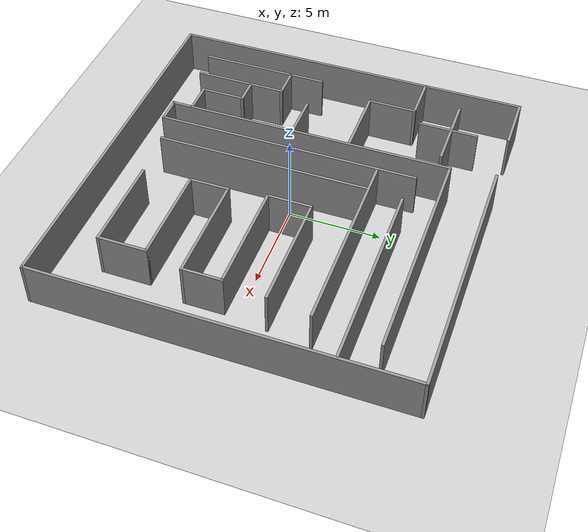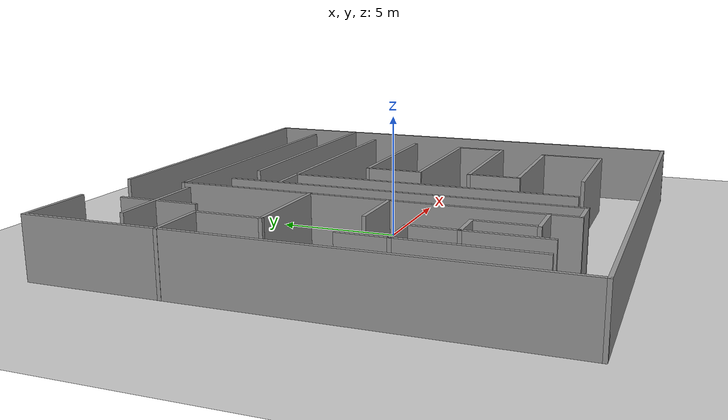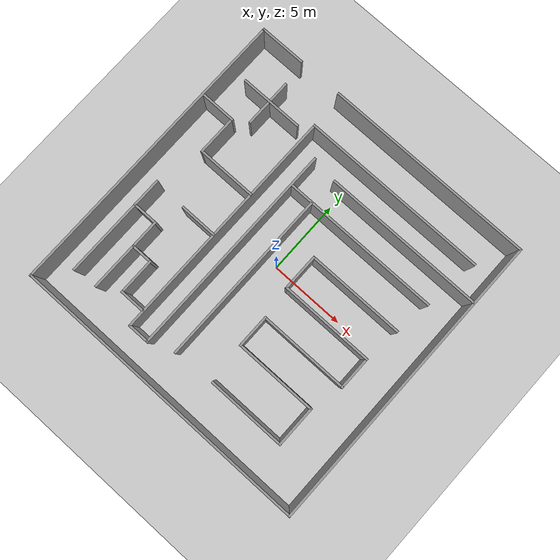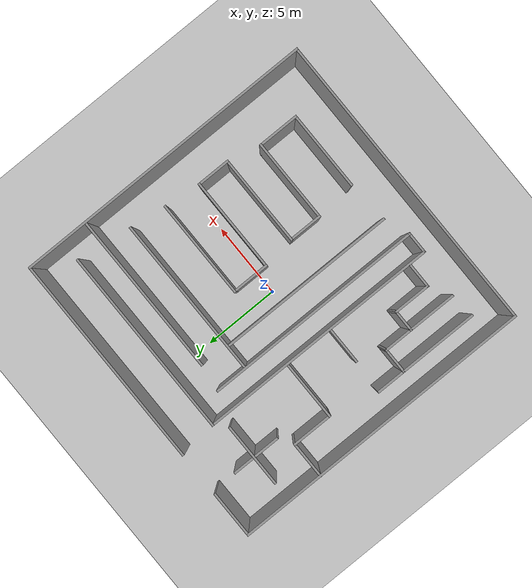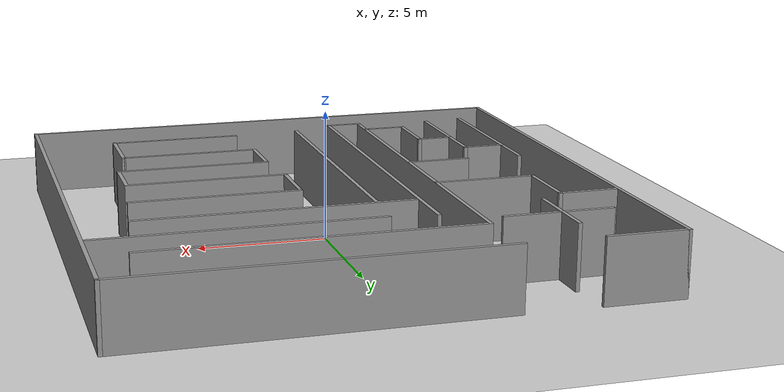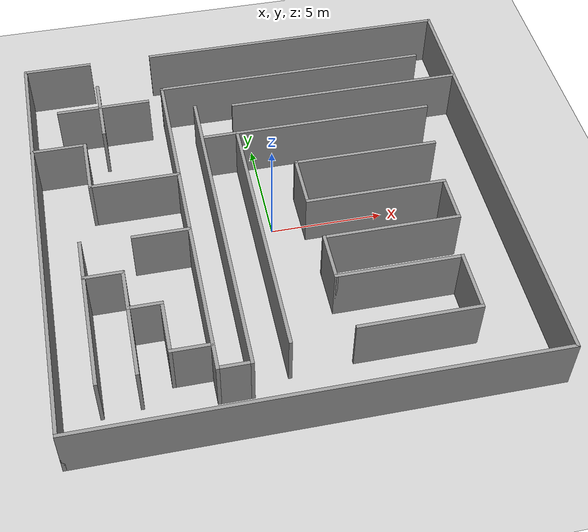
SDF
<sdf version="1.7">
 <world name="default">
  <light name="sun" type="directional">
   <pose>0 0 10 0 -0 0</pose>
   <diffuse>0.8 0.8 0.8 1</diffuse>
   <specular>0.2 0.2 0.2 1</specular>
   <attenuation>
    <range>1000</range>
    <constant>0.9</constant>
    <linear>0.01</linear>
    <quadratic>0.001</quadratic>
   </attenuation>
   <direction>-0.5 0.1 -0.9</direction>
   <spot><inner_angle>0</inner_angle><outer_angle>0</outer_angle><falloff>0</falloff></spot>
  </light>
  <model name="ground_plane">
   <static>1</static>
   <link name="link">
    <collision name="collision">
     <geometry><plane><normal>0 0 1</normal><size>100 100</size></plane></geometry>
     <surface><friction><ode><mu>100</mu><mu2>50</mu2></ode></friction></surface>
    </collision>
    <visual name="visual">
     <cast_shadows>0</cast_shadows>
     <geometry><plane><normal>0 0 1</normal><size>100 100</size></plane></geometry>
     <material>
      <script><uri>file://media/materials/scripts/gazebo.material</uri><name>Gazebo/Grey</name></script>
     </material>
    </visual>
   </link>
  </model>
  <gravity>0 0 -9.8</gravity>
  <magnetic_field>6e-06 2.3e-05 -4.2e-05</magnetic_field>
  <atmosphere type="adiabatic"/>
  <physics type="ode">
   <max_step_size>0.001</max_step_size>
   <real_time_factor>1</real_time_factor>
   <real_time_update_rate>1000</real_time_update_rate>
  </physics>
  <scene><ambient>0.4 0.4 0.4 1</ambient><background>0.7 0.7 0.7 1</background><shadows>1</shadows></scene>
  <spherical_coordinates>
   <surface_model>EARTH_WGS84</surface_model>
   <latitude_deg>0</latitude_deg>
   <longitude_deg>0</longitude_deg>
   <elevation>0</elevation>
   <heading_deg>0</heading_deg>
  </spherical_coordinates>
  <model name="final_maze_2">
   <pose>-0.002942 -0 0 0 -0 0</pose>
   <link name="Wall_0">
    <collision name="Wall_0_Collision">
     <geometry><box><size>20.15 0.15 2.5</size></box></geometry>
     <pose>0 0 1.25 0 -0 0</pose>
    </collision>
    <visual name="Wall_0_Visual">
     <pose>0 0 1.25 0 -0 0</pose>
     <geometry><box><size>20.15 0.15 2.5</size></box></geometry>
     <material>
      <script><uri>file://media/materials/scripts/gazebo.material</uri><name>Gazebo/Grey</name></script>
      <ambient>1 1 1 1</ambient>
     </material>
     <meta><layer>0</layer></meta>
    </visual>
    <pose>-9.99706 0 0 0 -0 1.5708</pose>
   </link>
   <link name="Wall_16">
    <collision name="Wall_16_Collision">
     <geometry><box><size>12.5 0.15 2.5</size></box></geometry>
     <pose>0 0 1.25 0 -0 0</pose>
    </collision>
    <visual name="Wall_16_Visual">
     <pose>0 0 1.25 0 -0 0</pose>
     <geometry><box><size>12.5 0.15 2.5</size></box></geometry>
     <material>
      <script><uri>file://media/materials/scripts/gazebo.material</uri><name>Gazebo/Grey</name></script>
      <ambient>1 1 1 1</ambient>
     </material>
     <meta><layer>0</layer></meta>
    </visual>
    <pose>2.4033 7.57226 0 0 -0 3.14159</pose>
   </link>
   <link name="Wall_17">
    <collision name="Wall_17_Collision">
     <geometry><box><size>16 0.15 2.5</size></box></geometry>
     <pose>0 0 1.25 0 -0 0</pose>
    </collision>
    <visual name="Wall_17_Visual">
     <pose>0 0 1.25 0 -0 0</pose>
     <geometry><box><size>16 0.15 2.5</size></box></geometry>
     <material>
      <script><uri>file://media/materials/scripts/gazebo.material</uri><name>Gazebo/Grey</name></script>
      <ambient>1 1 1 1</ambient>
     </material>
     <meta><layer>0</layer></meta>
    </visual>
    <pose>-3.7717 -0.352735 0 0 -0 -1.5708</pose>
   </link>
   <link name="Wall_18">
    <collision name="Wall_18_Collision">
     <geometry><box><size>1.5 0.15 2.5</size></box></geometry>
     <pose>0 0 1.25 0 -0 0</pose>
    </collision>
    <visual name="Wall_18_Visual">
     <pose>0 0 1.25 0 -0 0</pose>
     <geometry><box><size>1.5 0.15 2.5</size></box></geometry>
     <material>
      <script><uri>file://media/materials/scripts/gazebo.material</uri><name>Gazebo/Grey</name></script>
      <ambient>1 1 1 1</ambient>
     </material>
     <meta><layer>0</layer></meta>
    </visual>
    <pose>-3.0967 -8.27773 0 0 -0 0</pose>
   </link>
   <link name="Wall_19">
    <collision name="Wall_19_Collision">
     <geometry><box><size>14.5 0.15 2.5</size></box></geometry>
     <pose>0 0 1.25 0 -0 0</pose>
    </collision>
    <visual name="Wall_19_Visual">
     <pose>0 0 1.25 0 -0 0</pose>
     <geometry><box><size>14.5 0.15 2.5</size></box></geometry>
     <material>
      <script><uri>file://media/materials/scripts/gazebo.material</uri><name>Gazebo/Grey</name></script>
      <ambient>1 1 1 1</ambient>
     </material>
     <meta><layer>0</layer></meta>
    </visual>
    <pose>-2.4217 -1.10274 0 0 -0 1.5708</pose>
   </link>
   <link name="Wall_2">
    <collision name="Wall_2_Collision">
     <geometry><box><size>20.15 0.15 2.5</size></box></geometry>
     <pose>0 0 1.25 0 -0 0</pose>
    </collision>
    <visual name="Wall_2_Visual">
     <pose>0 0 1.25 0 -0 0</pose>
     <geometry><box><size>20.15 0.15 2.5</size></box></geometry>
     <material>
      <script><uri>file://media/materials/scripts/gazebo.material</uri><name>Gazebo/Grey</name></script>
      <ambient>1 1 1 1</ambient>
     </material>
     <meta><layer>0</layer></meta>
    </visual>
    <pose>10.0029 0 0 0 -0 -1.5708</pose>
   </link>
   <link name="Wall_21">
    <collision name="Wall_21_Collision">
     <geometry><box><size>10.75 0.15 2.5</size></box></geometry>
     <pose>0 0 1.25 0 -0 0</pose>
    </collision>
    <visual name="Wall_21_Visual">
     <pose>0 0 1.25 0 -0 0</pose>
     <geometry><box><size>10.75 0.15 2.5</size></box></geometry>
     <material>
      <script><uri>file://media/materials/scripts/gazebo.material</uri><name>Gazebo/Grey</name></script>
      <ambient>1 1 1 1</ambient>
     </material>
     <meta><layer>0</layer></meta>
    </visual>
    <pose>4.64282 5.8486 0 0 -0 3.14159</pose>
   </link>
   <link name="Wall_27">
    <collision name="Wall_27_Collision">
     <geometry><box><size>10.5 0.15 2.5</size></box></geometry>
     <pose>0 0 1.25 0 -0 0</pose>
    </collision>
    <visual name="Wall_27_Visual">
     <pose>0 0 1.25 0 -0 0</pose>
     <geometry><box><size>10.5 0.15 2.5</size></box></geometry>
     <material>
      <script><uri>file://media/materials/scripts/gazebo.material</uri><name>Gazebo/Grey</name></script>
      <ambient>1 1 1 1</ambient>
     </material>
     <meta><layer>0</layer></meta>
    </visual>
    <pose>2.90274 4.01266 0 0 -0 0</pose>
   </link>
   <link name="Wall_29">
    <collision name="Wall_29_Collision">
     <geometry><box><size>11.75 0.15 2.5</size></box></geometry>
     <pose>0 0 1.25 0 -0 0</pose>
    </collision>
    <visual name="Wall_29_Visual">
     <pose>0 0 1.25 0 -0 0</pose>
     <geometry><box><size>11.75 0.15 2.5</size></box></geometry>
     <material>
      <script><uri>file://media/materials/scripts/gazebo.material</uri><name>Gazebo/Grey</name></script>
      <ambient>1 1 1 1</ambient>
     </material>
     <meta><layer>0</layer></meta>
    </visual>
    <pose>-0.807781 -1.85208 0 0 -0 -1.5708</pose>
   </link>
   <link name="Wall_32">
    <collision name="Wall_32_Collision">
     <geometry><box><size>1.75 0.15 2.5</size></box></geometry>
     <pose>0 0 1.25 0 -0 0</pose>
    </collision>
    <visual name="Wall_32_Visual">
     <pose>0 0 1.25 0 -0 0</pose>
     <geometry><box><size>1.75 0.15 2.5</size></box></geometry>
     <material>
      <script><uri>file://media/materials/scripts/gazebo.material</uri><name>Gazebo/Grey</name></script>
      <ambient>1 1 1 1</ambient>
     </material>
     <meta><layer>0</layer></meta>
    </visual>
    <pose>-4.62953 -7.17136 0 0 -0 3.14159</pose>
   </link>
   <link name="Wall_33">
    <collision name="Wall_33_Collision">
     <geometry><box><size>2.5 0.15 2.5</size></box></geometry>
     <pose>0 0 1.25 0 -0 0</pose>
    </collision>
    <visual name="Wall_33_Visual">
     <pose>0 0 1.25 0 -0 0</pose>
     <geometry><box><size>2.5 0.15 2.5</size></box></geometry>
     <material>
      <script><uri>file://media/materials/scripts/gazebo.material</uri><name>Gazebo/Grey</name></script>
      <ambient>1 1 1 1</ambient>
     </material>
     <meta><layer>0</layer></meta>
    </visual>
    <pose>-5.42953 -5.99636 0 0 -0 1.5708</pose>
   </link>
   <link name="Wall_34">
    <collision name="Wall_34_Collision">
     <geometry><box><size>1.5 0.15 2.5</size></box></geometry>
     <pose>0 0 1.25 0 -0 0</pose>
    </collision>
    <visual name="Wall_34_Visual">
     <pose>0 0 1.25 0 -0 0</pose>
     <geometry><box><size>1.5 0.15 2.5</size></box></geometry>
     <material>
      <script><uri>file://media/materials/scripts/gazebo.material</uri><name>Gazebo/Grey</name></script>
      <ambient>1 1 1 1</ambient>
     </material>
     <meta><layer>0</layer></meta>
    </visual>
    <pose>-6.10453 -4.82136 0 0 -0 3.14159</pose>
   </link>
   <link name="Wall_35">
    <collision name="Wall_35_Collision">
     <geometry><box><size>2 0.15 2.5</size></box></geometry>
     <pose>0 0 1.25 0 -0 0</pose>
    </collision>
    <visual name="Wall_35_Visual">
     <pose>0 0 1.25 0 -0 0</pose>
     <geometry><box><size>2 0.15 2.5</size></box></geometry>
     <material>
      <script><uri>file://media/materials/scripts/gazebo.material</uri><name>Gazebo/Grey</name></script>
      <ambient>1 1 1 1</ambient>
     </material>
     <meta><layer>0</layer></meta>
    </visual>
    <pose>-6.77953 -3.89636 0 0 -0 1.5708</pose>
   </link>
   <link name="Wall_36">
    <collision name="Wall_36_Collision">
     <geometry><box><size>1.75 0.15 2.5</size></box></geometry>
     <pose>0 0 1.25 0 -0 0</pose>
    </collision>
    <visual name="Wall_36_Visual">
     <pose>0 0 1.25 0 -0 0</pose>
     <geometry><box><size>1.75 0.15 2.5</size></box></geometry>
     <material>
      <script><uri>file://media/materials/scripts/gazebo.material</uri><name>Gazebo/Grey</name></script>
      <ambient>1 1 1 1</ambient>
     </material>
     <meta><layer>0</layer></meta>
    </visual>
    <pose>-7.57953 -2.97136 0 0 -0 3.14159</pose>
   </link>
   <link name="Wall_37">
    <collision name="Wall_37_Collision">
     <geometry><box><size>2 0.15 2.5</size></box></geometry>
     <pose>0 0 1.25 0 -0 0</pose>
    </collision>
    <visual name="Wall_37_Visual">
     <pose>0 0 1.25 0 -0 0</pose>
     <geometry><box><size>2 0.15 2.5</size></box></geometry>
     <material>
      <script><uri>file://media/materials/scripts/gazebo.material</uri><name>Gazebo/Grey</name></script>
      <ambient>1 1 1 1</ambient>
     </material>
     <meta><layer>0</layer></meta>
    </visual>
    <pose>-8.37953 -2.04637 0 0 -0 1.5708</pose>
   </link>
   <link name="Wall_4">
    <collision name="Wall_4_Collision">
     <geometry><box><size>20.15 0.15 2.5</size></box></geometry>
     <pose>0 0 1.25 0 -0 0</pose>
    </collision>
    <visual name="Wall_4_Visual">
     <pose>0 0 1.25 0 -0 0</pose>
     <geometry><box><size>20.15 0.15 2.5</size></box></geometry>
     <material>
      <script><uri>file://media/materials/scripts/gazebo.material</uri><name>Gazebo/Grey</name></script>
      <ambient>1 1 1 1</ambient>
     </material>
     <meta><layer>0</layer></meta>
    </visual>
    <pose>0.002942 -10 0 0 -0 0</pose>
   </link>
   <link name="Wall_44">
    <collision name="Wall_44_Collision">
     <geometry><box><size>5.25 0.15 2.5</size></box></geometry>
     <pose>0 0 1.25 0 -0 0</pose>
    </collision>
    <visual name="Wall_44_Visual">
     <pose>0 0 1.25 0 -0 0</pose>
     <geometry><box><size>5.25 0.15 2.5</size></box></geometry>
     <material>
      <script><uri>file://media/materials/scripts/gazebo.material</uri><name>Gazebo/Grey</name></script>
      <ambient>1 1 1 1</ambient>
     </material>
     <meta><layer>0</layer></meta>
    </visual>
    <pose>-8.37953 -5.52137 0 0 -0 -1.5708</pose>
   </link>
   <link name="Wall_46">
    <collision name="Wall_46_Collision">
     <geometry><box><size>3.25 0.15 2.5</size></box></geometry>
     <pose>0 0 1.25 0 -0 0</pose>
    </collision>
    <visual name="Wall_46_Visual">
     <pose>0 0 1.25 0 -0 0</pose>
     <geometry><box><size>3.25 0.15 2.5</size></box></geometry>
     <material>
      <script><uri>file://media/materials/scripts/gazebo.material</uri><name>Gazebo/Grey</name></script>
      <ambient>1 1 1 1</ambient>
     </material>
     <meta><layer>0</layer></meta>
    </visual>
    <pose>-6.77953 -6.37136 0 0 -0 -1.5708</pose>
   </link>
   <link name="Wall_48">
    <collision name="Wall_48_Collision">
     <geometry><box><size>4 0.15 2.5</size></box></geometry>
     <pose>0 0 1.25 0 -0 0</pose>
    </collision>
    <visual name="Wall_48_Visual">
     <pose>0 0 1.25 0 -0 0</pose>
     <geometry><box><size>4 0.15 2.5</size></box></geometry>
     <material>
      <script><uri>file://media/materials/scripts/gazebo.material</uri><name>Gazebo/Grey</name></script>
      <ambient>1 1 1 1</ambient>
     </material>
     <meta><layer>0</layer></meta>
    </visual>
    <pose>-5.72794 1.99097 0 0 -0 3.14159</pose>
   </link>
   <link name="Wall_52">
    <collision name="Wall_52_Collision">
     <geometry><box><size>2.75 0.15 2.5</size></box></geometry>
     <pose>0 0 1.25 0 -0 0</pose>
    </collision>
    <visual name="Wall_52_Visual">
     <pose>0 0 1.25 0 -0 0</pose>
     <geometry><box><size>2.75 0.15 2.5</size></box></geometry>
     <material>
      <script><uri>file://media/materials/scripts/gazebo.material</uri><name>Gazebo/Grey</name></script>
      <ambient>1 1 1 1</ambient>
     </material>
     <meta><layer>0</layer></meta>
    </visual>
    <pose>-7.65294 3.29097 0 0 -0 1.5708</pose>
   </link>
   <link name="Wall_53">
    <collision name="Wall_53_Collision">
     <geometry><box><size>2.5 0.15 2.5</size></box></geometry>
     <pose>0 0 1.25 0 -0 0</pose>
    </collision>
    <visual name="Wall_53_Visual">
     <pose>0 0 1.25 0 -0 0</pose>
     <geometry><box><size>2.5 0.15 2.5</size></box></geometry>
     <material>
      <script><uri>file://media/materials/scripts/gazebo.material</uri><name>Gazebo/Grey</name></script>
      <ambient>1 1 1 1</ambient>
     </material>
     <meta><layer>0</layer></meta>
    </visual>
    <pose>-8.82794 4.59097 0 0 -0 3.14159</pose>
   </link>
   <link name="Wall_55">
    <collision name="Wall_55_Collision">
     <geometry><box><size>4.25 0.15 2.5</size></box></geometry>
     <pose>0 0 1.25 0 -0 0</pose>
    </collision>
    <visual name="Wall_55_Visual">
     <pose>0 0 1.25 0 -0 0</pose>
     <geometry><box><size>4.25 0.15 2.5</size></box></geometry>
     <material>
      <script><uri>file://media/materials/scripts/gazebo.material</uri><name>Gazebo/Grey</name></script>
      <ambient>1 1 1 1</ambient>
     </material>
     <meta><layer>0</layer></meta>
    </visual>
    <pose>-6.59689 6.89542 0 0 -0 0</pose>
   </link>
   <link name="Wall_57">
    <collision name="Wall_57_Collision">
     <geometry><box><size>2.5 0.15 2.5</size></box></geometry>
     <pose>0 0 1.25 0 -0 0</pose>
    </collision>
    <visual name="Wall_57_Visual">
     <pose>0 0 1.25 0 -0 0</pose>
     <geometry><box><size>2.5 0.15 2.5</size></box></geometry>
     <material>
      <script><uri>file://media/materials/scripts/gazebo.material</uri><name>Gazebo/Grey</name></script>
      <ambient>1 1 1 1</ambient>
     </material>
     <meta><layer>0</layer></meta>
    </visual>
    <pose>-4.99746 -1.21616 0 0 -0 3.14159</pose>
   </link>
   <link name="Wall_59">
    <collision name="Wall_59_Collision">
     <geometry><box><size>3.25 0.15 2.5</size></box></geometry>
     <pose>0 0 1.25 0 -0 0</pose>
    </collision>
    <visual name="Wall_59_Visual">
     <pose>0 0 1.25 0 -0 0</pose>
     <geometry><box><size>3.25 0.15 2.5</size></box></geometry>
     <material>
      <script><uri>file://media/materials/scripts/gazebo.material</uri><name>Gazebo/Grey</name></script>
      <ambient>1 1 1 1</ambient>
     </material>
     <meta><layer>0</layer></meta>
    </visual>
    <pose>-6.73686 6.75082 0 0 -0 -1.5708</pose>
   </link>
   <link name="Wall_61">
    <collision name="Wall_61_Collision">
     <geometry><box><size>6.5 0.15 2.5</size></box></geometry>
     <pose>0 0 1.25 0 -0 0</pose>
    </collision>
    <visual name="Wall_61_Visual">
     <pose>0 0 1.25 0 -0 0</pose>
     <geometry><box><size>6.5 0.15 2.5</size></box></geometry>
     <material>
      <script><uri>file://media/materials/scripts/gazebo.material</uri><name>Gazebo/Grey</name></script>
      <ambient>1 1 1 1</ambient>
     </material>
     <meta><layer>0</layer></meta>
    </visual>
    <pose>4.59472 1.67485 0 0 -0 3.14159</pose>
   </link>
   <link name="Wall_62">
    <collision name="Wall_62_Collision">
     <geometry><box><size>2.5 0.15 2.5</size></box></geometry>
     <pose>0 0 1.25 0 -0 0</pose>
    </collision>
    <visual name="Wall_62_Visual">
     <pose>0 0 1.25 0 -0 0</pose>
     <geometry><box><size>2.5 0.15 2.5</size></box></geometry>
     <material>
      <script><uri>file://media/materials/scripts/gazebo.material</uri><name>Gazebo/Grey</name></script>
      <ambient>1 1 1 1</ambient>
     </material>
     <meta><layer>0</layer></meta>
    </visual>
    <pose>1.41972 0.499851 0 0 -0 -1.5708</pose>
   </link>
   <link name="Wall_63">
    <collision name="Wall_63_Collision">
     <geometry><box><size>6.25 0.15 2.5</size></box></geometry>
     <pose>0 0 1.25 0 -0 0</pose>
    </collision>
    <visual name="Wall_63_Visual">
     <pose>0 0 1.25 0 -0 0</pose>
     <geometry><box><size>6.25 0.15 2.5</size></box></geometry>
     <material>
      <script><uri>file://media/materials/scripts/gazebo.material</uri><name>Gazebo/Grey</name></script>
      <ambient>1 1 1 1</ambient>
     </material>
     <meta><layer>0</layer></meta>
    </visual>
    <pose>4.46972 -0.675149 0 0 -0 0</pose>
   </link>
   <link name="Wall_64">
    <collision name="Wall_64_Collision">
     <geometry><box><size>2.25 0.15 2.5</size></box></geometry>
     <pose>0 0 1.25 0 -0 0</pose>
    </collision>
    <visual name="Wall_64_Visual">
     <pose>0 0 1.25 0 -0 0</pose>
     <geometry><box><size>2.25 0.15 2.5</size></box></geometry>
     <material>
      <script><uri>file://media/materials/scripts/gazebo.material</uri><name>Gazebo/Grey</name></script>
      <ambient>1 1 1 1</ambient>
     </material>
     <meta><layer>0</layer></meta>
    </visual>
    <pose>7.51972 -1.72515 0 0 -0 -1.5708</pose>
   </link>
   <link name="Wall_66">
    <collision name="Wall_66_Collision">
     <geometry><box><size>6 0.15 2.5</size></box></geometry>
     <pose>0 0 1.25 0 -0 0</pose>
    </collision>
    <visual name="Wall_66_Visual">
     <pose>0 0 1.25 0 -0 0</pose>
     <geometry><box><size>6 0.15 2.5</size></box></geometry>
     <material>
      <script><uri>file://media/materials/scripts/gazebo.material</uri><name>Gazebo/Grey</name></script>
      <ambient>1 1 1 1</ambient>
     </material>
     <meta><layer>0</layer></meta>
    </visual>
    <pose>4.59472 -2.77515 0 0 -0 3.14159</pose>
   </link>
   <link name="Wall_67">
    <collision name="Wall_67_Collision">
     <geometry><box><size>2.25 0.15 2.5</size></box></geometry>
     <pose>0 0 1.25 0 -0 0</pose>
    </collision>
    <visual name="Wall_67_Visual">
     <pose>0 0 1.25 0 -0 0</pose>
     <geometry><box><size>2.25 0.15 2.5</size></box></geometry>
     <material>
      <script><uri>file://media/materials/scripts/gazebo.material</uri><name>Gazebo/Grey</name></script>
      <ambient>1 1 1 1</ambient>
     </material>
     <meta><layer>0</layer></meta>
    </visual>
    <pose>1.66972 -3.82515 0 0 -0 -1.5708</pose>
   </link>
   <link name="Wall_68">
    <collision name="Wall_68_Collision">
     <geometry><box><size>5.5 0.15 2.5</size></box></geometry>
     <pose>0 0 1.25 0 -0 0</pose>
    </collision>
    <visual name="Wall_68_Visual">
     <pose>0 0 1.25 0 -0 0</pose>
     <geometry><box><size>5.5 0.15 2.5</size></box></geometry>
     <material>
      <script><uri>file://media/materials/scripts/gazebo.material</uri><name>Gazebo/Grey</name></script>
      <ambient>1 1 1 1</ambient>
     </material>
     <meta><layer>0</layer></meta>
    </visual>
    <pose>4.34472 -4.87515 0 0 -0 0</pose>
   </link>
   <link name="Wall_69">
    <collision name="Wall_69_Collision">
     <geometry><box><size>2.75 0.15 2.5</size></box></geometry>
     <pose>0 0 1.25 0 -0 0</pose>
    </collision>
    <visual name="Wall_69_Visual">
     <pose>0 0 1.25 0 -0 0</pose>
     <geometry><box><size>2.75 0.15 2.5</size></box></geometry>
     <material>
      <script><uri>file://media/materials/scripts/gazebo.material</uri><name>Gazebo/Grey</name></script>
      <ambient>1 1 1 1</ambient>
     </material>
     <meta><layer>0</layer></meta>
    </visual>
    <pose>7.01972 -6.17515 0 0 -0 -1.5708</pose>
   </link>
   <link name="Wall_7">
    <collision name="Wall_7_Collision">
     <geometry><box><size>14.15 0.15 2.5</size></box></geometry>
     <pose>0 0 1.25 0 -0 0</pose>
    </collision>
    <visual name="Wall_7_Visual">
     <pose>0 0 1.25 0 -0 0</pose>
     <geometry><box><size>14.15 0.15 2.5</size></box></geometry>
     <material>
      <script><uri>file://media/materials/scripts/gazebo.material</uri><name>Gazebo/Grey</name></script>
      <ambient>1 1 1 1</ambient>
     </material>
     <meta><layer>0</layer></meta>
    </visual>
    <pose>3.00294 10 0 0 -0 3.14159</pose>
   </link>
   <link name="Wall_70">
    <collision name="Wall_70_Collision">
     <geometry><box><size>5.25 0.15 2.5</size></box></geometry>
     <pose>0 0 1.25 0 -0 0</pose>
    </collision>
    <visual name="Wall_70_Visual">
     <pose>0 0 1.25 0 -0 0</pose>
     <geometry><box><size>5.25 0.15 2.5</size></box></geometry>
     <material>
      <script><uri>file://media/materials/scripts/gazebo.material</uri><name>Gazebo/Grey</name></script>
      <ambient>1 1 1 1</ambient>
     </material>
     <meta><layer>0</layer></meta>
    </visual>
    <pose>4.46972 -7.47515 0 0 -0 3.14159</pose>
   </link>
   <link name="Wall_9">
    <collision name="Wall_9_Collision">
     <geometry><box><size>3.15 0.15 2.5</size></box></geometry>
     <pose>0 0 1.25 0 -0 0</pose>
    </collision>
    <visual name="Wall_9_Visual">
     <pose>0 0 1.25 0 -0 0</pose>
     <geometry><box><size>3.15 0.15 2.5</size></box></geometry>
     <material>
      <script><uri>file://media/materials/scripts/gazebo.material</uri><name>Gazebo/Grey</name></script>
      <ambient>1 1 1 1</ambient>
     </material>
     <meta><layer>0</layer></meta>
    </visual>
    <pose>-8.49706 10 0 0 -0 0</pose>
   </link>
   <static>1</static>
  </model>
 </world>
</sdf>
